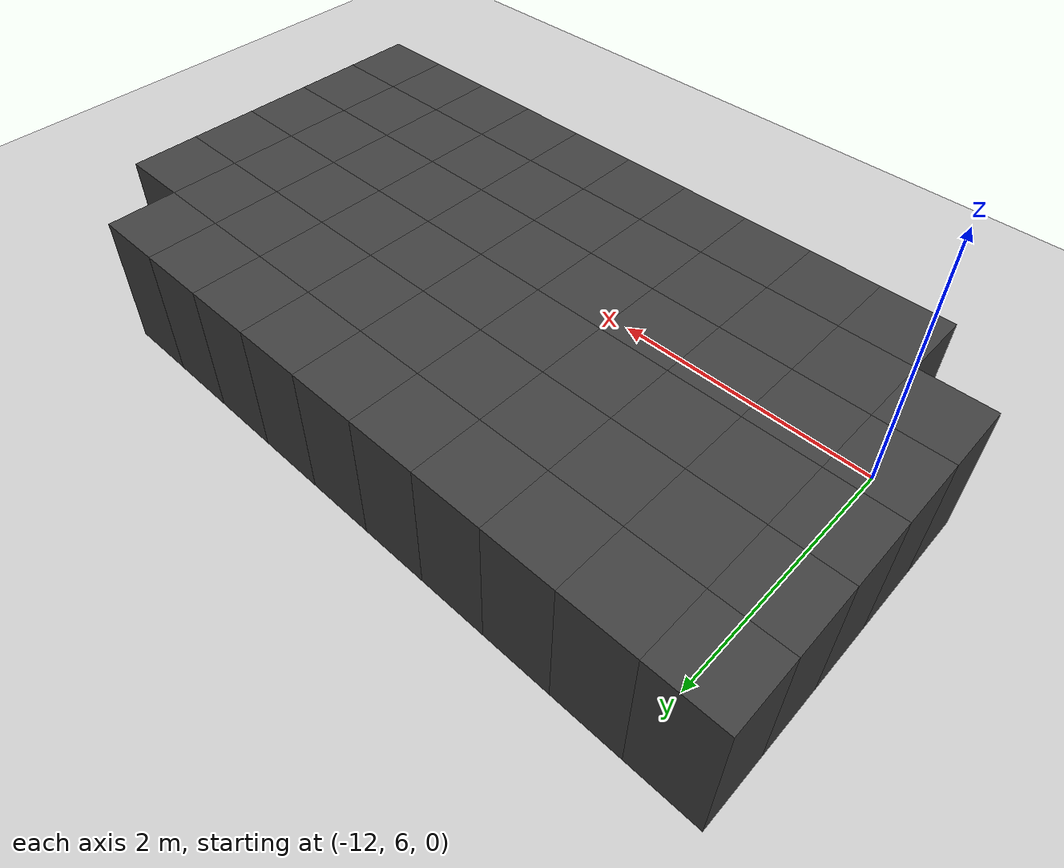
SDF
<sdf version="1.7">
 <world name="map_11515">
  <model name="ground_plane">
   <static>true</static>
   <link name="link">
    <collision name="collision">
     <geometry><plane><normal>0 0 1</normal><size>200 200</size></plane></geometry>
    </collision>
    <visual name="visual">
     <geometry><plane><normal>0 0 1</normal><size>200 200</size></plane></geometry>
     <material><ambient>0.8 0.8 0.8 1</ambient><diffuse>0.8 0.8 0.8 1</diffuse></material>
    </visual>
   </link>
  </model>
  <model name="maze_environment">
   <static>true</static>
   <link name="wall_354">
    <pose>-12.250 8.250 0.500 0 0 0</pose>
    <collision name="col"><geometry><box><size>0.5 0.5 1.0</size></box></geometry></collision>
    <visual name="vis">
     <geometry><box><size>0.5 0.5 1.0</size></box></geometry>
     <material><ambient>0.15 0.15 0.15 1</ambient><diffuse>0.25 0.25 0.25 1</diffuse></material>
    </visual>
   </link>
   <link name="wall_355">
    <pose>-11.750 8.250 0.500 0 0 0</pose>
    <collision name="col"><geometry><box><size>0.5 0.5 1.0</size></box></geometry></collision>
    <visual name="vis">
     <geometry><box><size>0.5 0.5 1.0</size></box></geometry>
     <material><ambient>0.15 0.15 0.15 1</ambient><diffuse>0.25 0.25 0.25 1</diffuse></material>
    </visual>
   </link>
   <link name="wall_356">
    <pose>-11.250 8.250 0.500 0 0 0</pose>
    <collision name="col"><geometry><box><size>0.5 0.5 1.0</size></box></geometry></collision>
    <visual name="vis">
     <geometry><box><size>0.5 0.5 1.0</size></box></geometry>
     <material><ambient>0.15 0.15 0.15 1</ambient><diffuse>0.25 0.25 0.25 1</diffuse></material>
    </visual>
   </link>
   <link name="wall_357">
    <pose>-10.750 8.250 0.500 0 0 0</pose>
    <collision name="col"><geometry><box><size>0.5 0.5 1.0</size></box></geometry></collision>
    <visual name="vis">
     <geometry><box><size>0.5 0.5 1.0</size></box></geometry>
     <material><ambient>0.15 0.15 0.15 1</ambient><diffuse>0.25 0.25 0.25 1</diffuse></material>
    </visual>
   </link>
   <link name="wall_358">
    <pose>-10.250 8.250 0.500 0 0 0</pose>
    <collision name="col"><geometry><box><size>0.5 0.5 1.0</size></box></geometry></collision>
    <visual name="vis">
     <geometry><box><size>0.5 0.5 1.0</size></box></geometry>
     <material><ambient>0.15 0.15 0.15 1</ambient><diffuse>0.25 0.25 0.25 1</diffuse></material>
    </visual>
   </link>
   <link name="wall_359">
    <pose>-9.750 8.250 0.500 0 0 0</pose>
    <collision name="col"><geometry><box><size>0.5 0.5 1.0</size></box></geometry></collision>
    <visual name="vis">
     <geometry><box><size>0.5 0.5 1.0</size></box></geometry>
     <material><ambient>0.15 0.15 0.15 1</ambient><diffuse>0.25 0.25 0.25 1</diffuse></material>
    </visual>
   </link>
   <link name="wall_360">
    <pose>-9.250 8.250 0.500 0 0 0</pose>
    <collision name="col"><geometry><box><size>0.5 0.5 1.0</size></box></geometry></collision>
    <visual name="vis">
     <geometry><box><size>0.5 0.5 1.0</size></box></geometry>
     <material><ambient>0.15 0.15 0.15 1</ambient><diffuse>0.25 0.25 0.25 1</diffuse></material>
    </visual>
   </link>
   <link name="wall_361">
    <pose>-8.750 8.250 0.500 0 0 0</pose>
    <collision name="col"><geometry><box><size>0.5 0.5 1.0</size></box></geometry></collision>
    <visual name="vis">
     <geometry><box><size>0.5 0.5 1.0</size></box></geometry>
     <material><ambient>0.15 0.15 0.15 1</ambient><diffuse>0.25 0.25 0.25 1</diffuse></material>
    </visual>
   </link>
   <link name="wall_362">
    <pose>-8.250 8.250 0.500 0 0 0</pose>
    <collision name="col"><geometry><box><size>0.5 0.5 1.0</size></box></geometry></collision>
    <visual name="vis">
     <geometry><box><size>0.5 0.5 1.0</size></box></geometry>
     <material><ambient>0.15 0.15 0.15 1</ambient><diffuse>0.25 0.25 0.25 1</diffuse></material>
    </visual>
   </link>
   <link name="wall_363">
    <pose>-7.750 8.250 0.500 0 0 0</pose>
    <collision name="col"><geometry><box><size>0.5 0.5 1.0</size></box></geometry></collision>
    <visual name="vis">
     <geometry><box><size>0.5 0.5 1.0</size></box></geometry>
     <material><ambient>0.15 0.15 0.15 1</ambient><diffuse>0.25 0.25 0.25 1</diffuse></material>
    </visual>
   </link>
   <link name="wall_394">
    <pose>-12.250 7.750 0.500 0 0 0</pose>
    <collision name="col"><geometry><box><size>0.5 0.5 1.0</size></box></geometry></collision>
    <visual name="vis">
     <geometry><box><size>0.5 0.5 1.0</size></box></geometry>
     <material><ambient>0.15 0.15 0.15 1</ambient><diffuse>0.25 0.25 0.25 1</diffuse></material>
    </visual>
   </link>
   <link name="wall_395">
    <pose>-11.750 7.750 0.500 0 0 0</pose>
    <collision name="col"><geometry><box><size>0.5 0.5 1.0</size></box></geometry></collision>
    <visual name="vis">
     <geometry><box><size>0.5 0.5 1.0</size></box></geometry>
     <material><ambient>0.15 0.15 0.15 1</ambient><diffuse>0.25 0.25 0.25 1</diffuse></material>
    </visual>
   </link>
   <link name="wall_396">
    <pose>-11.250 7.750 0.500 0 0 0</pose>
    <collision name="col"><geometry><box><size>0.5 0.5 1.0</size></box></geometry></collision>
    <visual name="vis">
     <geometry><box><size>0.5 0.5 1.0</size></box></geometry>
     <material><ambient>0.15 0.15 0.15 1</ambient><diffuse>0.25 0.25 0.25 1</diffuse></material>
    </visual>
   </link>
   <link name="wall_397">
    <pose>-10.750 7.750 0.500 0 0 0</pose>
    <collision name="col"><geometry><box><size>0.5 0.5 1.0</size></box></geometry></collision>
    <visual name="vis">
     <geometry><box><size>0.5 0.5 1.0</size></box></geometry>
     <material><ambient>0.15 0.15 0.15 1</ambient><diffuse>0.25 0.25 0.25 1</diffuse></material>
    </visual>
   </link>
   <link name="wall_398">
    <pose>-10.250 7.750 0.500 0 0 0</pose>
    <collision name="col"><geometry><box><size>0.5 0.5 1.0</size></box></geometry></collision>
    <visual name="vis">
     <geometry><box><size>0.5 0.5 1.0</size></box></geometry>
     <material><ambient>0.15 0.15 0.15 1</ambient><diffuse>0.25 0.25 0.25 1</diffuse></material>
    </visual>
   </link>
   <link name="wall_399">
    <pose>-9.750 7.750 0.500 0 0 0</pose>
    <collision name="col"><geometry><box><size>0.5 0.5 1.0</size></box></geometry></collision>
    <visual name="vis">
     <geometry><box><size>0.5 0.5 1.0</size></box></geometry>
     <material><ambient>0.15 0.15 0.15 1</ambient><diffuse>0.25 0.25 0.25 1</diffuse></material>
    </visual>
   </link>
   <link name="wall_400">
    <pose>-9.250 7.750 0.500 0 0 0</pose>
    <collision name="col"><geometry><box><size>0.5 0.5 1.0</size></box></geometry></collision>
    <visual name="vis">
     <geometry><box><size>0.5 0.5 1.0</size></box></geometry>
     <material><ambient>0.15 0.15 0.15 1</ambient><diffuse>0.25 0.25 0.25 1</diffuse></material>
    </visual>
   </link>
   <link name="wall_401">
    <pose>-8.750 7.750 0.500 0 0 0</pose>
    <collision name="col"><geometry><box><size>0.5 0.5 1.0</size></box></geometry></collision>
    <visual name="vis">
     <geometry><box><size>0.5 0.5 1.0</size></box></geometry>
     <material><ambient>0.15 0.15 0.15 1</ambient><diffuse>0.25 0.25 0.25 1</diffuse></material>
    </visual>
   </link>
   <link name="wall_402">
    <pose>-8.250 7.750 0.500 0 0 0</pose>
    <collision name="col"><geometry><box><size>0.5 0.5 1.0</size></box></geometry></collision>
    <visual name="vis">
     <geometry><box><size>0.5 0.5 1.0</size></box></geometry>
     <material><ambient>0.15 0.15 0.15 1</ambient><diffuse>0.25 0.25 0.25 1</diffuse></material>
    </visual>
   </link>
   <link name="wall_403">
    <pose>-7.750 7.750 0.500 0 0 0</pose>
    <collision name="col"><geometry><box><size>0.5 0.5 1.0</size></box></geometry></collision>
    <visual name="vis">
     <geometry><box><size>0.5 0.5 1.0</size></box></geometry>
     <material><ambient>0.15 0.15 0.15 1</ambient><diffuse>0.25 0.25 0.25 1</diffuse></material>
    </visual>
   </link>
   <link name="wall_404">
    <pose>-7.250 7.750 0.500 0 0 0</pose>
    <collision name="col"><geometry><box><size>0.5 0.5 1.0</size></box></geometry></collision>
    <visual name="vis">
     <geometry><box><size>0.5 0.5 1.0</size></box></geometry>
     <material><ambient>0.15 0.15 0.15 1</ambient><diffuse>0.25 0.25 0.25 1</diffuse></material>
    </visual>
   </link>
   <link name="wall_432">
    <pose>-12.250 7.250 0.500 0 0 0</pose>
    <collision name="col"><geometry><box><size>0.5 0.5 1.0</size></box></geometry></collision>
    <visual name="vis">
     <geometry><box><size>0.5 0.5 1.0</size></box></geometry>
     <material><ambient>0.15 0.15 0.15 1</ambient><diffuse>0.25 0.25 0.25 1</diffuse></material>
    </visual>
   </link>
   <link name="wall_433">
    <pose>-11.750 7.250 0.500 0 0 0</pose>
    <collision name="col"><geometry><box><size>0.5 0.5 1.0</size></box></geometry></collision>
    <visual name="vis">
     <geometry><box><size>0.5 0.5 1.0</size></box></geometry>
     <material><ambient>0.15 0.15 0.15 1</ambient><diffuse>0.25 0.25 0.25 1</diffuse></material>
    </visual>
   </link>
   <link name="wall_434">
    <pose>-11.250 7.250 0.500 0 0 0</pose>
    <collision name="col"><geometry><box><size>0.5 0.5 1.0</size></box></geometry></collision>
    <visual name="vis">
     <geometry><box><size>0.5 0.5 1.0</size></box></geometry>
     <material><ambient>0.15 0.15 0.15 1</ambient><diffuse>0.25 0.25 0.25 1</diffuse></material>
    </visual>
   </link>
   <link name="wall_435">
    <pose>-10.750 7.250 0.500 0 0 0</pose>
    <collision name="col"><geometry><box><size>0.5 0.5 1.0</size></box></geometry></collision>
    <visual name="vis">
     <geometry><box><size>0.5 0.5 1.0</size></box></geometry>
     <material><ambient>0.15 0.15 0.15 1</ambient><diffuse>0.25 0.25 0.25 1</diffuse></material>
    </visual>
   </link>
   <link name="wall_436">
    <pose>-10.250 7.250 0.500 0 0 0</pose>
    <collision name="col"><geometry><box><size>0.5 0.5 1.0</size></box></geometry></collision>
    <visual name="vis">
     <geometry><box><size>0.5 0.5 1.0</size></box></geometry>
     <material><ambient>0.15 0.15 0.15 1</ambient><diffuse>0.25 0.25 0.25 1</diffuse></material>
    </visual>
   </link>
   <link name="wall_437">
    <pose>-9.750 7.250 0.500 0 0 0</pose>
    <collision name="col"><geometry><box><size>0.5 0.5 1.0</size></box></geometry></collision>
    <visual name="vis">
     <geometry><box><size>0.5 0.5 1.0</size></box></geometry>
     <material><ambient>0.15 0.15 0.15 1</ambient><diffuse>0.25 0.25 0.25 1</diffuse></material>
    </visual>
   </link>
   <link name="wall_438">
    <pose>-9.250 7.250 0.500 0 0 0</pose>
    <collision name="col"><geometry><box><size>0.5 0.5 1.0</size></box></geometry></collision>
    <visual name="vis">
     <geometry><box><size>0.5 0.5 1.0</size></box></geometry>
     <material><ambient>0.15 0.15 0.15 1</ambient><diffuse>0.25 0.25 0.25 1</diffuse></material>
    </visual>
   </link>
   <link name="wall_439">
    <pose>-8.750 7.250 0.500 0 0 0</pose>
    <collision name="col"><geometry><box><size>0.5 0.5 1.0</size></box></geometry></collision>
    <visual name="vis">
     <geometry><box><size>0.5 0.5 1.0</size></box></geometry>
     <material><ambient>0.15 0.15 0.15 1</ambient><diffuse>0.25 0.25 0.25 1</diffuse></material>
    </visual>
   </link>
   <link name="wall_440">
    <pose>-8.250 7.250 0.500 0 0 0</pose>
    <collision name="col"><geometry><box><size>0.5 0.5 1.0</size></box></geometry></collision>
    <visual name="vis">
     <geometry><box><size>0.5 0.5 1.0</size></box></geometry>
     <material><ambient>0.15 0.15 0.15 1</ambient><diffuse>0.25 0.25 0.25 1</diffuse></material>
    </visual>
   </link>
   <link name="wall_441">
    <pose>-7.750 7.250 0.500 0 0 0</pose>
    <collision name="col"><geometry><box><size>0.5 0.5 1.0</size></box></geometry></collision>
    <visual name="vis">
     <geometry><box><size>0.5 0.5 1.0</size></box></geometry>
     <material><ambient>0.15 0.15 0.15 1</ambient><diffuse>0.25 0.25 0.25 1</diffuse></material>
    </visual>
   </link>
   <link name="wall_442">
    <pose>-7.250 7.250 0.500 0 0 0</pose>
    <collision name="col"><geometry><box><size>0.5 0.5 1.0</size></box></geometry></collision>
    <visual name="vis">
     <geometry><box><size>0.5 0.5 1.0</size></box></geometry>
     <material><ambient>0.15 0.15 0.15 1</ambient><diffuse>0.25 0.25 0.25 1</diffuse></material>
    </visual>
   </link>
   <link name="wall_471">
    <pose>-12.250 6.750 0.500 0 0 0</pose>
    <collision name="col"><geometry><box><size>0.5 0.5 1.0</size></box></geometry></collision>
    <visual name="vis">
     <geometry><box><size>0.5 0.5 1.0</size></box></geometry>
     <material><ambient>0.15 0.15 0.15 1</ambient><diffuse>0.25 0.25 0.25 1</diffuse></material>
    </visual>
   </link>
   <link name="wall_472">
    <pose>-11.750 6.750 0.500 0 0 0</pose>
    <collision name="col"><geometry><box><size>0.5 0.5 1.0</size></box></geometry></collision>
    <visual name="vis">
     <geometry><box><size>0.5 0.5 1.0</size></box></geometry>
     <material><ambient>0.15 0.15 0.15 1</ambient><diffuse>0.25 0.25 0.25 1</diffuse></material>
    </visual>
   </link>
   <link name="wall_473">
    <pose>-11.250 6.750 0.500 0 0 0</pose>
    <collision name="col"><geometry><box><size>0.5 0.5 1.0</size></box></geometry></collision>
    <visual name="vis">
     <geometry><box><size>0.5 0.5 1.0</size></box></geometry>
     <material><ambient>0.15 0.15 0.15 1</ambient><diffuse>0.25 0.25 0.25 1</diffuse></material>
    </visual>
   </link>
   <link name="wall_474">
    <pose>-10.750 6.750 0.500 0 0 0</pose>
    <collision name="col"><geometry><box><size>0.5 0.5 1.0</size></box></geometry></collision>
    <visual name="vis">
     <geometry><box><size>0.5 0.5 1.0</size></box></geometry>
     <material><ambient>0.15 0.15 0.15 1</ambient><diffuse>0.25 0.25 0.25 1</diffuse></material>
    </visual>
   </link>
   <link name="wall_475">
    <pose>-10.250 6.750 0.500 0 0 0</pose>
    <collision name="col"><geometry><box><size>0.5 0.5 1.0</size></box></geometry></collision>
    <visual name="vis">
     <geometry><box><size>0.5 0.5 1.0</size></box></geometry>
     <material><ambient>0.15 0.15 0.15 1</ambient><diffuse>0.25 0.25 0.25 1</diffuse></material>
    </visual>
   </link>
   <link name="wall_476">
    <pose>-9.750 6.750 0.500 0 0 0</pose>
    <collision name="col"><geometry><box><size>0.5 0.5 1.0</size></box></geometry></collision>
    <visual name="vis">
     <geometry><box><size>0.5 0.5 1.0</size></box></geometry>
     <material><ambient>0.15 0.15 0.15 1</ambient><diffuse>0.25 0.25 0.25 1</diffuse></material>
    </visual>
   </link>
   <link name="wall_477">
    <pose>-9.250 6.750 0.500 0 0 0</pose>
    <collision name="col"><geometry><box><size>0.5 0.5 1.0</size></box></geometry></collision>
    <visual name="vis">
     <geometry><box><size>0.5 0.5 1.0</size></box></geometry>
     <material><ambient>0.15 0.15 0.15 1</ambient><diffuse>0.25 0.25 0.25 1</diffuse></material>
    </visual>
   </link>
   <link name="wall_478">
    <pose>-8.750 6.750 0.500 0 0 0</pose>
    <collision name="col"><geometry><box><size>0.5 0.5 1.0</size></box></geometry></collision>
    <visual name="vis">
     <geometry><box><size>0.5 0.5 1.0</size></box></geometry>
     <material><ambient>0.15 0.15 0.15 1</ambient><diffuse>0.25 0.25 0.25 1</diffuse></material>
    </visual>
   </link>
   <link name="wall_479">
    <pose>-8.250 6.750 0.500 0 0 0</pose>
    <collision name="col"><geometry><box><size>0.5 0.5 1.0</size></box></geometry></collision>
    <visual name="vis">
     <geometry><box><size>0.5 0.5 1.0</size></box></geometry>
     <material><ambient>0.15 0.15 0.15 1</ambient><diffuse>0.25 0.25 0.25 1</diffuse></material>
    </visual>
   </link>
   <link name="wall_480">
    <pose>-7.750 6.750 0.500 0 0 0</pose>
    <collision name="col"><geometry><box><size>0.5 0.5 1.0</size></box></geometry></collision>
    <visual name="vis">
     <geometry><box><size>0.5 0.5 1.0</size></box></geometry>
     <material><ambient>0.15 0.15 0.15 1</ambient><diffuse>0.25 0.25 0.25 1</diffuse></material>
    </visual>
   </link>
   <link name="wall_481">
    <pose>-7.250 6.750 0.500 0 0 0</pose>
    <collision name="col"><geometry><box><size>0.5 0.5 1.0</size></box></geometry></collision>
    <visual name="vis">
     <geometry><box><size>0.5 0.5 1.0</size></box></geometry>
     <material><ambient>0.15 0.15 0.15 1</ambient><diffuse>0.25 0.25 0.25 1</diffuse></material>
    </visual>
   </link>
   <link name="wall_514">
    <pose>-12.250 6.250 0.500 0 0 0</pose>
    <collision name="col"><geometry><box><size>0.5 0.5 1.0</size></box></geometry></collision>
    <visual name="vis">
     <geometry><box><size>0.5 0.5 1.0</size></box></geometry>
     <material><ambient>0.15 0.15 0.15 1</ambient><diffuse>0.25 0.25 0.25 1</diffuse></material>
    </visual>
   </link>
   <link name="wall_515">
    <pose>-11.750 6.250 0.500 0 0 0</pose>
    <collision name="col"><geometry><box><size>0.5 0.5 1.0</size></box></geometry></collision>
    <visual name="vis">
     <geometry><box><size>0.5 0.5 1.0</size></box></geometry>
     <material><ambient>0.15 0.15 0.15 1</ambient><diffuse>0.25 0.25 0.25 1</diffuse></material>
    </visual>
   </link>
   <link name="wall_516">
    <pose>-11.250 6.250 0.500 0 0 0</pose>
    <collision name="col"><geometry><box><size>0.5 0.5 1.0</size></box></geometry></collision>
    <visual name="vis">
     <geometry><box><size>0.5 0.5 1.0</size></box></geometry>
     <material><ambient>0.15 0.15 0.15 1</ambient><diffuse>0.25 0.25 0.25 1</diffuse></material>
    </visual>
   </link>
   <link name="wall_517">
    <pose>-10.750 6.250 0.500 0 0 0</pose>
    <collision name="col"><geometry><box><size>0.5 0.5 1.0</size></box></geometry></collision>
    <visual name="vis">
     <geometry><box><size>0.5 0.5 1.0</size></box></geometry>
     <material><ambient>0.15 0.15 0.15 1</ambient><diffuse>0.25 0.25 0.25 1</diffuse></material>
    </visual>
   </link>
   <link name="wall_518">
    <pose>-10.250 6.250 0.500 0 0 0</pose>
    <collision name="col"><geometry><box><size>0.5 0.5 1.0</size></box></geometry></collision>
    <visual name="vis">
     <geometry><box><size>0.5 0.5 1.0</size></box></geometry>
     <material><ambient>0.15 0.15 0.15 1</ambient><diffuse>0.25 0.25 0.25 1</diffuse></material>
    </visual>
   </link>
   <link name="wall_519">
    <pose>-9.750 6.250 0.500 0 0 0</pose>
    <collision name="col"><geometry><box><size>0.5 0.5 1.0</size></box></geometry></collision>
    <visual name="vis">
     <geometry><box><size>0.5 0.5 1.0</size></box></geometry>
     <material><ambient>0.15 0.15 0.15 1</ambient><diffuse>0.25 0.25 0.25 1</diffuse></material>
    </visual>
   </link>
   <link name="wall_520">
    <pose>-9.250 6.250 0.500 0 0 0</pose>
    <collision name="col"><geometry><box><size>0.5 0.5 1.0</size></box></geometry></collision>
    <visual name="vis">
     <geometry><box><size>0.5 0.5 1.0</size></box></geometry>
     <material><ambient>0.15 0.15 0.15 1</ambient><diffuse>0.25 0.25 0.25 1</diffuse></material>
    </visual>
   </link>
   <link name="wall_521">
    <pose>-8.750 6.250 0.500 0 0 0</pose>
    <collision name="col"><geometry><box><size>0.5 0.5 1.0</size></box></geometry></collision>
    <visual name="vis">
     <geometry><box><size>0.5 0.5 1.0</size></box></geometry>
     <material><ambient>0.15 0.15 0.15 1</ambient><diffuse>0.25 0.25 0.25 1</diffuse></material>
    </visual>
   </link>
   <link name="wall_522">
    <pose>-8.250 6.250 0.500 0 0 0</pose>
    <collision name="col"><geometry><box><size>0.5 0.5 1.0</size></box></geometry></collision>
    <visual name="vis">
     <geometry><box><size>0.5 0.5 1.0</size></box></geometry>
     <material><ambient>0.15 0.15 0.15 1</ambient><diffuse>0.25 0.25 0.25 1</diffuse></material>
    </visual>
   </link>
   <link name="wall_523">
    <pose>-7.750 6.250 0.500 0 0 0</pose>
    <collision name="col"><geometry><box><size>0.5 0.5 1.0</size></box></geometry></collision>
    <visual name="vis">
     <geometry><box><size>0.5 0.5 1.0</size></box></geometry>
     <material><ambient>0.15 0.15 0.15 1</ambient><diffuse>0.25 0.25 0.25 1</diffuse></material>
    </visual>
   </link>
   <link name="wall_524">
    <pose>-7.250 6.250 0.500 0 0 0</pose>
    <collision name="col"><geometry><box><size>0.5 0.5 1.0</size></box></geometry></collision>
    <visual name="vis">
     <geometry><box><size>0.5 0.5 1.0</size></box></geometry>
     <material><ambient>0.15 0.15 0.15 1</ambient><diffuse>0.25 0.25 0.25 1</diffuse></material>
    </visual>
   </link>
   <link name="wall_558">
    <pose>-11.750 5.750 0.500 0 0 0</pose>
    <collision name="col"><geometry><box><size>0.5 0.5 1.0</size></box></geometry></collision>
    <visual name="vis">
     <geometry><box><size>0.5 0.5 1.0</size></box></geometry>
     <material><ambient>0.15 0.15 0.15 1</ambient><diffuse>0.25 0.25 0.25 1</diffuse></material>
    </visual>
   </link>
   <link name="wall_559">
    <pose>-11.250 5.750 0.500 0 0 0</pose>
    <collision name="col"><geometry><box><size>0.5 0.5 1.0</size></box></geometry></collision>
    <visual name="vis">
     <geometry><box><size>0.5 0.5 1.0</size></box></geometry>
     <material><ambient>0.15 0.15 0.15 1</ambient><diffuse>0.25 0.25 0.25 1</diffuse></material>
    </visual>
   </link>
   <link name="wall_560">
    <pose>-10.750 5.750 0.500 0 0 0</pose>
    <collision name="col"><geometry><box><size>0.5 0.5 1.0</size></box></geometry></collision>
    <visual name="vis">
     <geometry><box><size>0.5 0.5 1.0</size></box></geometry>
     <material><ambient>0.15 0.15 0.15 1</ambient><diffuse>0.25 0.25 0.25 1</diffuse></material>
    </visual>
   </link>
   <link name="wall_561">
    <pose>-10.250 5.750 0.500 0 0 0</pose>
    <collision name="col"><geometry><box><size>0.5 0.5 1.0</size></box></geometry></collision>
    <visual name="vis">
     <geometry><box><size>0.5 0.5 1.0</size></box></geometry>
     <material><ambient>0.15 0.15 0.15 1</ambient><diffuse>0.25 0.25 0.25 1</diffuse></material>
    </visual>
   </link>
   <link name="wall_562">
    <pose>-9.750 5.750 0.500 0 0 0</pose>
    <collision name="col"><geometry><box><size>0.5 0.5 1.0</size></box></geometry></collision>
    <visual name="vis">
     <geometry><box><size>0.5 0.5 1.0</size></box></geometry>
     <material><ambient>0.15 0.15 0.15 1</ambient><diffuse>0.25 0.25 0.25 1</diffuse></material>
    </visual>
   </link>
   <link name="wall_563">
    <pose>-9.250 5.750 0.500 0 0 0</pose>
    <collision name="col"><geometry><box><size>0.5 0.5 1.0</size></box></geometry></collision>
    <visual name="vis">
     <geometry><box><size>0.5 0.5 1.0</size></box></geometry>
     <material><ambient>0.15 0.15 0.15 1</ambient><diffuse>0.25 0.25 0.25 1</diffuse></material>
    </visual>
   </link>
   <link name="wall_564">
    <pose>-8.750 5.750 0.500 0 0 0</pose>
    <collision name="col"><geometry><box><size>0.5 0.5 1.0</size></box></geometry></collision>
    <visual name="vis">
     <geometry><box><size>0.5 0.5 1.0</size></box></geometry>
     <material><ambient>0.15 0.15 0.15 1</ambient><diffuse>0.25 0.25 0.25 1</diffuse></material>
    </visual>
   </link>
   <link name="wall_565">
    <pose>-8.250 5.750 0.500 0 0 0</pose>
    <collision name="col"><geometry><box><size>0.5 0.5 1.0</size></box></geometry></collision>
    <visual name="vis">
     <geometry><box><size>0.5 0.5 1.0</size></box></geometry>
     <material><ambient>0.15 0.15 0.15 1</ambient><diffuse>0.25 0.25 0.25 1</diffuse></material>
    </visual>
   </link>
   <link name="wall_566">
    <pose>-7.750 5.750 0.500 0 0 0</pose>
    <collision name="col"><geometry><box><size>0.5 0.5 1.0</size></box></geometry></collision>
    <visual name="vis">
     <geometry><box><size>0.5 0.5 1.0</size></box></geometry>
     <material><ambient>0.15 0.15 0.15 1</ambient><diffuse>0.25 0.25 0.25 1</diffuse></material>
    </visual>
   </link>
   <link name="wall_567">
    <pose>-7.250 5.750 0.500 0 0 0</pose>
    <collision name="col"><geometry><box><size>0.5 0.5 1.0</size></box></geometry></collision>
    <visual name="vis">
     <geometry><box><size>0.5 0.5 1.0</size></box></geometry>
     <material><ambient>0.15 0.15 0.15 1</ambient><diffuse>0.25 0.25 0.25 1</diffuse></material>
    </visual>
   </link>
  </model>
 </world>
</sdf>
